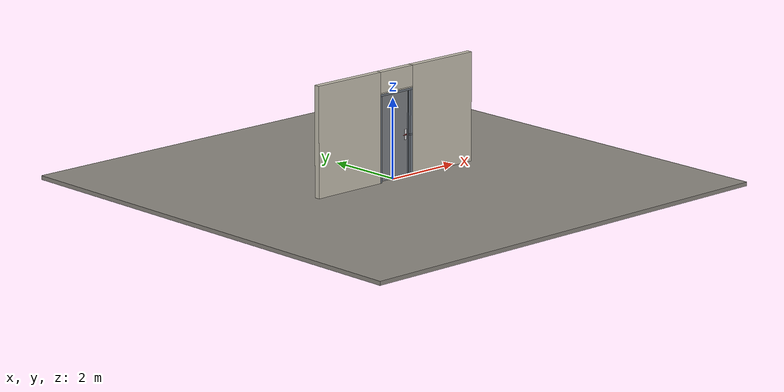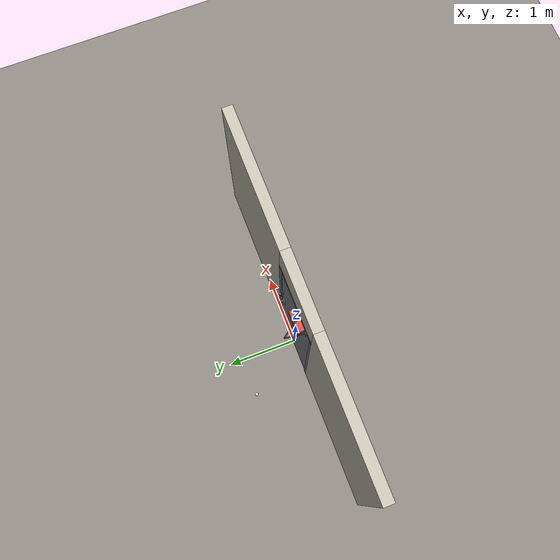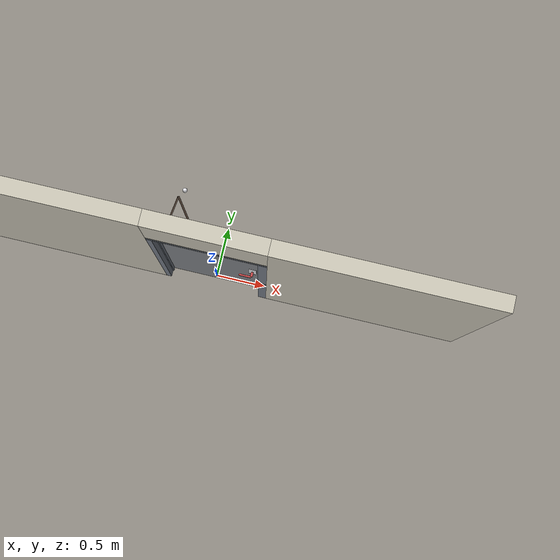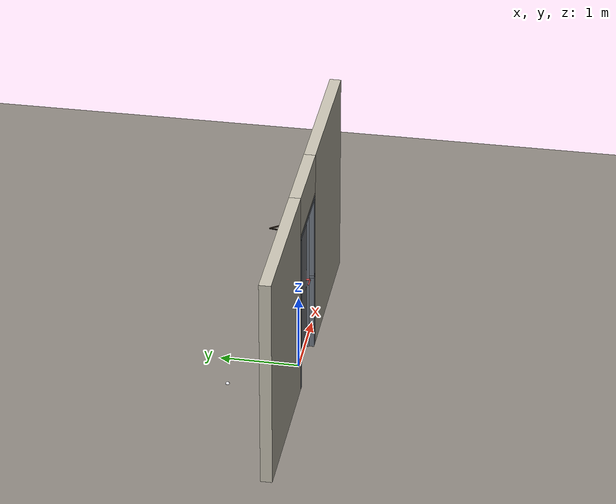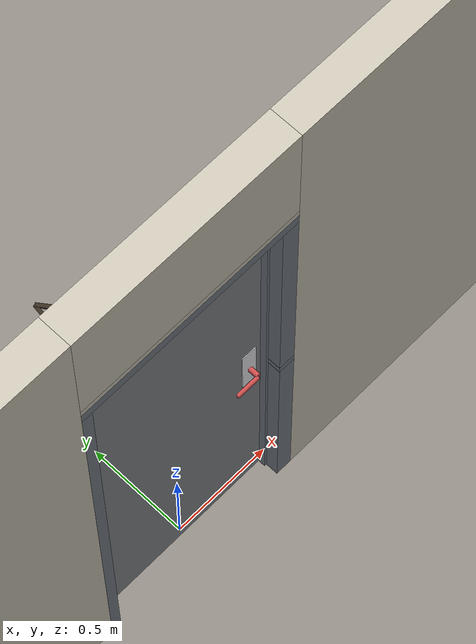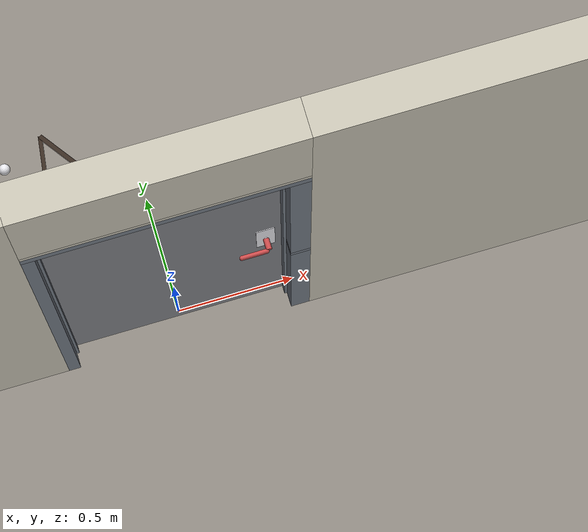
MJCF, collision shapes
<?xml version="1.0" ?>
<mujoco model="db0953_swing_single_full">
  <compiler angle="radian" meshdir="../../hardware" texturedir="../../textures" autolimits="true" inertiafromgeom="false"/>
  <option timestep="0.002" integrator="implicitfast" cone="elliptic" impratio="10" noslip_iterations="3">
    <flag multiccd="enable"/>
  </option>
  <size memory="16M"/>
  <default>
    <geom condim="4" solref="0.005 1" solimp="0.95 0.99 0.001"/>
    <joint solreflimit="0.005 1" solimplimit="0.95 0.99 0.001"/>
    <tendon solreflimit="0.005 1"/>
    <equality solref="0.002 1"/>
  </default>
  <visual>
    <headlight ambient="0.4 0.4 0.4" diffuse="0.7 0.7 0.7" specular="0.2 0.2 0.2"/>
    <quality shadowsize="4096"/>
    <map znear="0.01" zfar="60"/>
  </visual>
  <asset>
    <mesh name="card_reader_38c0bdb077" file="card_reader_38c0bdb077.obj"/>
    <mesh name="closer_body_fdc4667657" file="closer_body_fdc4667657.obj"/>
    <mesh name="coat_hook_d622d37ad0" file="coat_hook_d622d37ad0.obj"/>
    <mesh name="hinge_e22b26c0c1" file="hinge_e22b26c0c1.obj"/>
    <mesh name="hinge_jamb_e1d088f8dc" file="hinge_jamb_e1d088f8dc.obj"/>
    <mesh name="lever_56c65af20a" file="lever_56c65af20a.obj"/>
    <mesh name="peephole_f829311a59" file="peephole_f829311a59.obj"/>
    <material name="mat_floor" rgba="0.55 0.53 0.5 1" specular="0.2" shininess="0.15" reflectance="0"/>
    <material name="mat_wall" rgba="0.78 0.76 0.7 1" specular="0.2" shininess="0.1" reflectance="0"/>
    <material name="mat_leaf" rgba="0.5 0.51 0.53 1" specular="0.2" shininess="0.58" reflectance="0"/>
    <material name="mat_hinge" rgba="0.65 0.66 0.68 1" specular="0.74" shininess="0.5" reflectance="0.36"/>
    <material name="mat_op_chrome" rgba="0.9 0.9 0.92 1" specular="0.8" shininess="0.9" reflectance="0.4"/>
    <material name="mat_trim" rgba="0.85 0.66 0.3 1" specular="0.8" shininess="0.75" reflectance="0.4"/>
    <material name="mat_reader" rgba="0.05 0.05 0.05 1" specular="0.38" shininess="0.3" reflectance="0.12"/>
    <material name="mat_bolt" rgba="0.75 0.76 0.77 1" specular="0.8" shininess="0.65" reflectance="0.4"/>
    <material name="mat_chain" rgba="0.85 0.66 0.3 1" specular="0.8" shininess="0.75" reflectance="0.4"/>
    <material name="mat_frame" rgba="0.45 0.48 0.52 1" specular="0.32" shininess="0.6" reflectance="0.08"/>
    <material name="mat_seal" rgba="0.1 0.1 0.1 1" specular="0.2" shininess="0.1" reflectance="0"/>
    <material name="mat_closer" rgba="0.22 0.17 0.13 1" specular="0.8" shininess="0.6" reflectance="0.4"/>
    <material name="mat_peephole" rgba="0.85 0.66 0.3 1" specular="0.8" shininess="0.75" reflectance="0.4"/>
    <material name="mat_hook" rgba="0.9 0.9 0.92 1" specular="0.8" shininess="0.9" reflectance="0.4"/>
    <material name="mat_stop" rgba="0.9 0.9 0.92 1" specular="0.8" shininess="0.9" reflectance="0.4"/>
    <texture name="skybox" type="skybox" builtin="gradient" rgb1="0.6 0.7 0.85" rgb2="0.9 0.92 0.95" width="256" height="256"/>
  </asset>
  <worldbody>
    <light name="sun" pos="1.5 -2.5 4" dir="-0.3 0.5 -0.8" directional="true" diffuse="0.8 0.8 0.8" specular="0.3 0.3 0.3" castshadow="true"/>
    <light name="fill" pos="-1.5 2.5 3" dir="0.3 -0.5 -0.7" directional="true" diffuse="0.35 0.35 0.4" castshadow="false"/>
    <camera name="robot_view" pos="0 -2.681312 1.812087" xyaxes="1 0 0 0 0.26963 0.962964" fovy="52"/>
    <camera name="far_view" pos="0 2.594313 1.812087" xyaxes="-1 0 0 0 -0.26963 0.962964" fovy="52"/>
    <camera name="iso" pos="2.004737 -2.259262 2.234138" xyaxes="0.741536 0.670913 0 -0.242917 0.268487 0.932151" fovy="46"/>
    <camera name="detail_handle" pos="0.4705 -0.877 1.32" xyaxes="0.97561 0.219512 0 -0.070934 0.315262 0.94635" fovy="38"/>
    <geom name="floor" type="box" size="6 6 0.05" pos="0 0 -0.05" material="mat_floor" group="0" contype="1" conaffinity="1" friction="0.8 0.005 0.0001" density="2400"/>
    <geom name="wall_left" type="box" size="0.99475 0.0725 1.3735" pos="-1.50525 -0.0435 1.3735" material="mat_wall" group="0" contype="1" conaffinity="1" friction="0.6 0.005 0.0001" density="800"/>
    <geom name="wall_right" type="box" size="0.97975 0.0725 1.3735" pos="1.52025 -0.0435 1.3735" material="mat_wall" group="0" contype="1" conaffinity="1" friction="0.6 0.005 0.0001" density="800"/>
    <geom name="wall_header" type="box" size="0.5255 0.0725 0.26" pos="0.015 -0.0435 2.487" material="mat_wall" group="0" contype="1" conaffinity="1" friction="0.6 0.005 0.0001" density="800"/>
    <geom name="hinge_0_jamb" type="mesh" mesh="hinge_jamb_e1d088f8dc" pos="-0.4575 0.029 0.259" quat="0 1 0 0" material="mat_hinge" group="1" contype="0" conaffinity="0" density="7850"/>
    <geom name="hinge_1_jamb" type="mesh" mesh="hinge_jamb_e1d088f8dc" pos="-0.4575 0.029 1.076" quat="0 1 0 0" material="mat_hinge" group="1" contype="0" conaffinity="0" density="7850"/>
    <geom name="hinge_2_jamb" type="mesh" mesh="hinge_jamb_e1d088f8dc" pos="-0.4575 0.029 1.963" quat="0 1 0 0" material="mat_hinge" group="1" contype="0" conaffinity="0" density="7850"/>
    <geom name="leaf_chain_track" type="box" size="0.035 0.005 0.01" pos="0.4915 0.034 1.34" material="mat_chain" group="1" contype="0" conaffinity="0" density="8500"/>
    <geom name="jamb_hinge" type="box" size="0.025 0.0725 1.0735" pos="-0.4855 -0.0435 1.0735" material="mat_frame" group="0" contype="1" conaffinity="1" friction="0.6 0.005 0.0001" density="300"/>
    <geom name="strike_1040_wall_n" type="box" size="0.04 0.05325 0.018" pos="0.5005 -0.06275 1.04" material="mat_frame" group="0" contype="1" conaffinity="1" friction="0.6 0.005 0.0001" density="300"/>
    <geom name="strike_1040_wall_p" type="box" size="0.04 0.008 0.018" pos="0.5005 0.0175 1.04" material="mat_frame" group="0" contype="1" conaffinity="1" friction="0.6 0.005 0.0001" density="300"/>
    <geom name="strike_1040_ramp" type="box" size="0.04 0.018028 0.018" pos="0.503782 0.018312 1.04" quat="0.957092 0 0 -0.289784" material="mat_frame" group="0" contype="1" conaffinity="1" friction="0.12 0.005 0.0001" density="300"/>
    <geom name="strike_1040_back" type="box" size="0.0285 0.0095 0.018" pos="0.512 0 1.04" material="mat_frame" group="0" contype="1" conaffinity="1" friction="0.6 0.005 0.0001" density="300"/>
    <geom name="jamb_strike_0" type="box" size="0.04 0.0725 0.511" pos="0.5005 -0.0435 0.511" material="mat_frame" group="0" contype="1" conaffinity="1" friction="0.6 0.005 0.0001" density="300"/>
    <geom name="jamb_strike_1" type="box" size="0.04 0.0725 0.5445" pos="0.5005 -0.0435 1.6025" material="mat_frame" group="0" contype="1" conaffinity="1" friction="0.6 0.005 0.0001" density="300"/>
    <geom name="jamb_head" type="box" size="0.5255 0.0725 0.025" pos="0.015 -0.0435 2.172" material="mat_frame" group="0" contype="1" conaffinity="1" friction="0.6 0.005 0.0001" density="300"/>
    <geom name="head_stud" type="box" size="0.5255 0.0725 0.015" pos="0.015 -0.0435 2.212" material="mat_wall" group="0" contype="1" conaffinity="1" friction="0.6 0.005 0.0001" density="500"/>
    <geom name="stop_hinge" type="box" size="0.0055 0.016 1.0735" pos="-0.455 -0.0385 1.0735" material="mat_frame" group="0" contype="1" conaffinity="1" friction="0.6 0.005 0.0001" density="300"/>
    <geom name="stop_strike" type="box" size="0.0055 0.016 1.0735" pos="0.455 -0.0385 1.0735" material="mat_frame" group="0" contype="1" conaffinity="1" friction="0.6 0.005 0.0001" density="300"/>
    <geom name="stop_head" type="box" size="0.4605 0.016 0.0055" pos="0 -0.0385 2.1415" material="mat_frame" group="0" contype="1" conaffinity="1" friction="0.6 0.005 0.0001" density="300"/>
    <geom name="seal_hinge" type="box" size="0.004 0.0025 1.0735" pos="-0.4575 -0.0245 1.0735" material="mat_seal" group="1" contype="0" conaffinity="0" density="1100"/>
    <geom name="seal_strike" type="box" size="0.004 0.0025 1.0735" pos="0.4575 -0.0245 1.0735" material="mat_seal" group="1" contype="0" conaffinity="0" density="1100"/>
    <geom name="seal_head" type="box" size="0.4405 0.0025 0.008" pos="0 -0.0245 2.135" material="mat_seal" group="1" contype="0" conaffinity="0" density="1100"/>
    <geom name="closer_bracket" type="box" size="0.03 0.012 0.014" pos="-0.3605 0.041 2.177" material="mat_closer" group="1" contype="0" conaffinity="0" density="2700"/>
    <geom name="floor_stop_dome" type="sphere" size="0.025" pos="-0.545135 0.801201 0" material="mat_stop" group="0" contype="1" conaffinity="1" friction="0.6 0.005 0.0001" density="7000"/>
    <site name="approach_point" pos="0 -1.5 0" quat="1 0 0 0" size="0.05" rgba="0.2 0.9 0.2 0.5" group="4"/>
    <site name="goal_point" pos="0 1.5 0" quat="1 0 0 0" size="0.05" rgba="0.2 0.9 0.2 0.5" group="4"/>
    <site name="door_plane_center" pos="0 0 1.0735" quat="1 0 0 0" size="0.02" rgba="0.2 0.9 0.2 0.5" group="4"/>
    <body name="leaf" pos="-0.4605 0 0">
      <inertial pos="0.430064 0.014208 1.272753" mass="64.096817" quat="-0.471901 0.495396 0.516115 0.515284" diaginertia="4.054432137 29.073854668 33.022114558"/>
      <joint name="leaf_hinge" type="hinge" axis="0 0 1" pos="0.003 0.029 0" limited="true" range="0 0.098439" solreflimit="0.02 1" damping="12.268966" frictionloss="2.567838" stiffness="15.011494" springref="-1.939847" armature="0.02"/>
      <geom name="leaf_slab" type="box" size="0.457 0.022 1.067" pos="0.46 0 1.076" material="mat_leaf" group="0" contype="1" conaffinity="1" friction="0.4 0.005 0.0001" density="1"/>
      <geom name="hinge_0" type="mesh" mesh="hinge_e22b26c0c1" pos="0.003 0.029 0.259" quat="0 1 0 0" material="mat_hinge" group="1" contype="0" conaffinity="0" density="7850"/>
      <geom name="hinge_1" type="mesh" mesh="hinge_e22b26c0c1" pos="0.003 0.029 1.076" quat="0 1 0 0" material="mat_hinge" group="1" contype="0" conaffinity="0" density="7850"/>
      <geom name="hinge_2" type="mesh" mesh="hinge_e22b26c0c1" pos="0.003 0.029 1.963" quat="0 1 0 0" material="mat_hinge" group="1" contype="0" conaffinity="0" density="7850"/>
      <geom name="leaf_handle_escutcheon_n" type="box" size="0.0375 0.0015 0.13" pos="0.847 -0.0235 1.04" material="mat_op_chrome" group="1" contype="0" conaffinity="0" density="3000"/>
      <geom name="leaf_handle_escutcheon_p" type="box" size="0.0375 0.0015 0.13" pos="0.847 0.0235 1.04" material="mat_op_chrome" group="1" contype="0" conaffinity="0" density="3000"/>
      <geom name="leaf_handle_reader" type="mesh" mesh="card_reader_38c0bdb077" pos="0.847 -0.022 1.2" quat="0.707107 0.707107 0 0" material="mat_reader" group="1" contype="0" conaffinity="0" density="2000"/>
      <geom name="leaf_latch_bolt_faceplate" type="box" size="0.0006 0.014 0.028" pos="0.9164 0 1.04" material="mat_bolt" group="1" contype="0" conaffinity="0" density="8500"/>
      <geom name="leaf_chain_plate" type="box" size="0.012 0.002 0.02" pos="0.867 0.024 1.34" material="mat_chain" group="1" contype="0" conaffinity="0" density="8500"/>
      <geom name="leaf_chain_0" type="capsule" size="0.003 0.006273" pos="0.872167 0.030333 1.339" quat="0.636537 -0.049655 0.769646 0" material="mat_chain" group="1" contype="0" conaffinity="0" density="8500"/>
      <geom name="leaf_chain_1" type="capsule" size="0.003 0.006273" pos="0.8825 0.031 1.337" quat="0.636537 -0.049655 0.769646 0" material="mat_chain" group="1" contype="0" conaffinity="0" density="8500"/>
      <geom name="leaf_chain_2" type="capsule" size="0.003 0.006273" pos="0.892833 0.031667 1.335" quat="0.636537 -0.049655 0.769646 0" material="mat_chain" group="1" contype="0" conaffinity="0" density="8500"/>
      <geom name="leaf_chain_3" type="capsule" size="0.003 0.006273" pos="0.903167 0.032333 1.333" quat="0.636537 -0.049655 0.769646 0" material="mat_chain" group="1" contype="0" conaffinity="0" density="8500"/>
      <geom name="leaf_chain_4" type="capsule" size="0.003 0.006273" pos="0.9135 0.033 1.331" quat="0.636537 -0.049655 0.769646 0" material="mat_chain" group="1" contype="0" conaffinity="0" density="8500"/>
      <geom name="leaf_chain_5" type="capsule" size="0.003 0.006273" pos="0.923833 0.033667 1.329" quat="0.636537 -0.049655 0.769646 0" material="mat_chain" group="1" contype="0" conaffinity="0" density="8500"/>
      <geom name="closer_body" type="mesh" mesh="closer_body_fdc4667657" pos="0.3 0.022 2.054" quat="-0.707107 0.707107 0 0" material="mat_closer" group="1" contype="0" conaffinity="0" density="2000"/>
      <geom name="closer_body_col" type="box" size="0.145 0.05 0.035" pos="0.3 0.072 2.054" material="mat_closer" group="3" contype="1" conaffinity="1" rgba="0.8 0.3 0.3 0.25" friction="0.6 0.005 0.0001" density="2000"/>
      <geom name="closer_pinion_shaft" type="cylinder" size="0.008 0.0615" pos="0.3 0.072 2.1155" material="mat_closer" group="1" contype="0" conaffinity="0" density="2700"/>
      <geom name="peephole" type="mesh" mesh="peephole_f829311a59" pos="0.46 -0.022 1.509" quat="0.707107 0.707107 0 0" material="mat_peephole" group="2" contype="0" conaffinity="0" density="8500"/>
      <geom name="coat_hook" type="mesh" mesh="coat_hook_d622d37ad0" pos="0.46 0.022 1.793" quat="-0.707107 0.707107 0 0" material="mat_hook" group="2" contype="0" conaffinity="0" density="7000"/>
      <site name="leaf_edge_mid" pos="0.917 0 1.067" quat="1 0 0 0" size="0.02" rgba="0.2 0.9 0.2 0.5" group="4"/>
      <body name="leaf_handle" pos="0.847 0 1.04">
        <inertial pos="-0.034904 0 0" mass="0.739068" quat="0.707107 0 0 -0.707107" diaginertia="0.001260094 0.003272501 0.004494637"/>
        <joint name="leaf_handle_hinge" type="hinge" axis="0 -1 0" limited="true" range="0 0.87" damping="0.231314" frictionloss="0.06" stiffness="1.1" springref="-0.454545" armature="0.01"/>
        <geom name="leaf_handle_spindle" type="cylinder" size="0.006 0.034" pos="0 0 0" quat="0.707107 -0.707107 0 0" material="mat_op_chrome" group="1" contype="0" conaffinity="0" density="7850"/>
        <geom name="leaf_handle_lever_n" type="mesh" mesh="lever_56c65af20a" pos="0 -0.022 0" quat="0.707107 0.707107 0 0" material="mat_op_chrome" group="1" contype="0" conaffinity="0" density="3000"/>
        <geom name="leaf_handle_lever_col_n" type="capsule" size="0.0095 0.0505" pos="-0.06 -0.077 0" quat="0.707107 0 -0.707107 0" material="mat_op_chrome" group="3" contype="1" conaffinity="1" rgba="0.8 0.3 0.3 0.25" friction="0.7 0.01 0.0001" density="3000"/>
        <geom name="leaf_handle_hub_col_n" type="cylinder" size="0.012 0.022" pos="0 -0.052 0" quat="0.707107 -0.707107 0 0" material="mat_op_chrome" group="3" contype="1" conaffinity="1" rgba="0.8 0.3 0.3 0.25" friction="0.6 0.005 0.0001" density="3000"/>
        <geom name="leaf_handle_lever_p" type="mesh" mesh="lever_56c65af20a" pos="0 0.022 0" quat="-0.707107 0.707107 0 0" material="mat_op_chrome" group="1" contype="0" conaffinity="0" density="3000"/>
        <geom name="leaf_handle_lever_col_p" type="capsule" size="0.0095 0.0505" pos="-0.06 0.077 0" quat="0.707107 0 -0.707107 0" material="mat_op_chrome" group="3" contype="1" conaffinity="1" rgba="0.8 0.3 0.3 0.25" friction="0.7 0.01 0.0001" density="3000"/>
        <geom name="leaf_handle_hub_col_p" type="cylinder" size="0.012 0.022" pos="0 0.052 0" quat="0.707107 -0.707107 0 0" material="mat_op_chrome" group="3" contype="1" conaffinity="1" rgba="0.8 0.3 0.3 0.25" friction="0.6 0.005 0.0001" density="3000"/>
        <site name="leaf_handle_grip_n" pos="-0.096 -0.077 0" quat="1 0 0 0" size="0.012" rgba="0.2 0.9 0.2 0.5" group="4"/>
        <site name="leaf_handle_grip_p" pos="-0.096 0.077 0" quat="1 0 0 0" size="0.012" rgba="0.2 0.9 0.2 0.5" group="4"/>
      </body>
      <body name="leaf_latch_bolt" pos="0.917 0 1.04">
        <inertial pos="-0.0055 0 0" mass="0.074627" quat="0.92388 -0.382683 0 0" diaginertia="0.000002271 0.000013255 0.000013255"/>
        <joint name="leaf_latch_bolt_slide" type="slide" axis="-1 0 0" limited="true" range="0 0.019" damping="2" frictionloss="0.3" stiffness="550" springref="-0.01" armature="0.1"/>
        <geom name="leaf_latch_bolt_capsule" type="capsule" size="0.008 0.0165" pos="-0.0055 0 0" quat="0.707107 0 0.707107 0" material="mat_bolt" group="0" contype="1" conaffinity="1" friction="0.2 0.005 0.0001" density="8500"/>
      </body>
      <body name="closer_arm_main" pos="0.3 0.072 2.177" quat="0.454107 0 0 0.890947">
        <inertial pos="0.14 0 0" mass="0.12096" quat="1 0 0 0" diaginertia="0.000003588 0.00079128 0.000792852"/>
        <joint name="closer_pinion" type="hinge" axis="0 0 1" limited="false" damping="0.01" armature="0.002"/>
        <geom name="closer_arm_main_geom" type="box" size="0.14 0.008 0.005" pos="0.14 0 0" material="mat_closer" group="1" contype="0" conaffinity="0" density="2700"/>
        <body name="closer_arm_fore" pos="0.28 0 0" quat="-0.373215 0 0 -0.927745">
          <inertial pos="0.128088 0 0" mass="0.076531" quat="1 0 0 0" diaginertia="0.000001771 0.000437665 0.000438201"/>
          <joint name="closer_elbow" type="hinge" axis="0 0 1" limited="false" damping="0.01" armature="0.002"/>
          <geom name="closer_arm_fore_geom" type="box" size="0.1125 0.007 0.004" pos="0.1125 0 0" material="mat_closer" group="1" contype="0" conaffinity="0" density="2700"/>
          <geom name="closer_fore_neck" type="box" size="0.0175 0.003 0.003" pos="0.2425 0 0" material="mat_closer" group="1" contype="0" conaffinity="0" density="2700"/>
          <geom name="closer_fore_pivot" type="cylinder" size="0.005 0.012" pos="0.26 0 0" material="mat_closer" group="1" contype="0" conaffinity="0" density="2700"/>
        </body>
      </body>
    </body>
  </worldbody>
  <tendon>
    <fixed name="leaf_latch_bolt_coupling" limited="true" range="0 10">
      <joint joint="leaf_latch_bolt_slide" coef="1"/>
      <joint joint="leaf_handle_hinge" coef="-0.023457"/>
    </fixed>
  </tendon>
  <equality>
    <connect name="closer_arm_connect" body1="closer_arm_fore" body2="world" anchor="0.26 0 0" active="true"/>
  </equality>
  <contact>
    <exclude body1="closer_arm_main" body2="leaf"/>
    <exclude body1="closer_arm_fore" body2="leaf"/>
    <exclude body1="closer_arm_main" body2="closer_arm_fore"/>
  </contact>
  <sensor>
    <jointpos name="leaf_hinge_pos" joint="leaf_hinge"/>
    <jointvel name="leaf_hinge_vel" joint="leaf_hinge"/>
    <jointpos name="leaf_handle_hinge_pos" joint="leaf_handle_hinge"/>
    <jointvel name="leaf_handle_hinge_vel" joint="leaf_handle_hinge"/>
    <jointpos name="leaf_latch_bolt_slide_pos" joint="leaf_latch_bolt_slide"/>
    <jointvel name="leaf_latch_bolt_slide_vel" joint="leaf_latch_bolt_slide"/>
  </sensor>
</mujoco>
